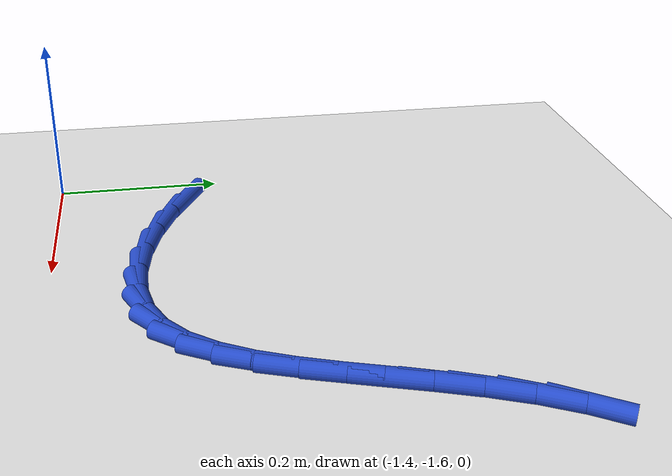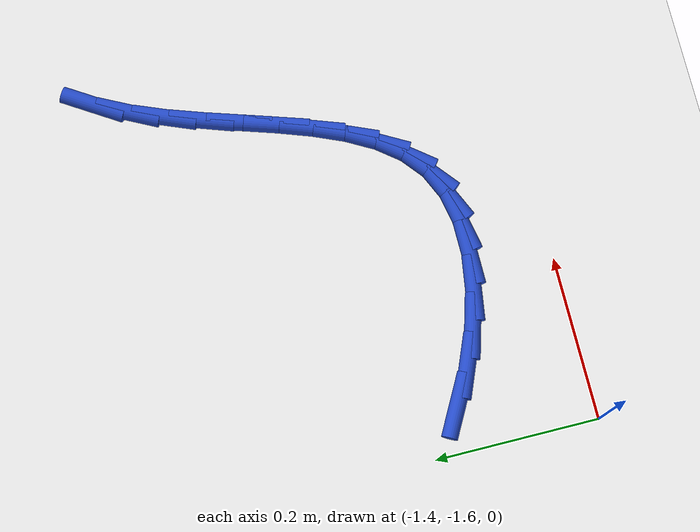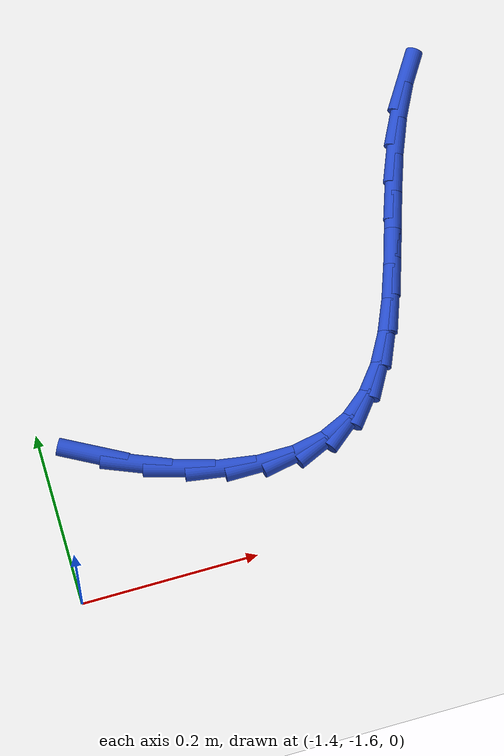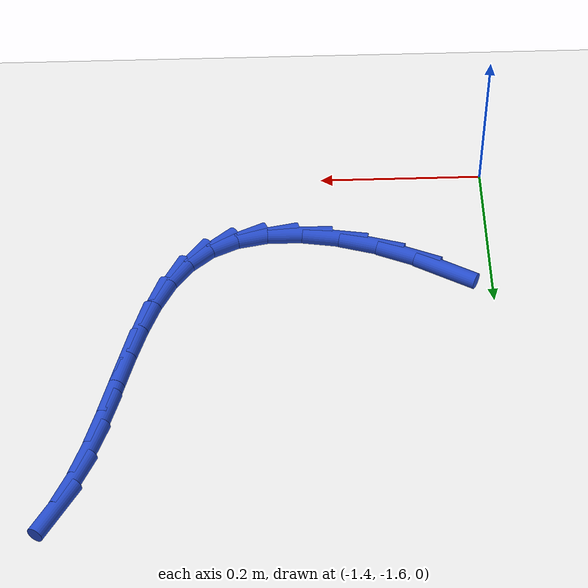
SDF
<sdf version="1.6">
 <world name="default">
  <model name="ground_plane">
   <static>1</static>
   <link name="link">
    <collision name="collision">
     <geometry><plane><normal>0 0 1</normal><size>100 100</size></plane></geometry>
     <surface><friction><ode><mu>100</mu><mu2>50</mu2></ode></friction></surface>
    </collision>
    <visual name="visual">
     <cast_shadows>0</cast_shadows>
     <geometry><plane><normal>0 0 1</normal><size>100 100</size></plane></geometry>
     <material>
      <script><uri>file://media/materials/scripts/gazebo.material</uri><name>Gazebo/WhiteGlow</name></script>
     </material>
    </visual>
   </link>
  </model>
  <model name="line">
   <link name="link_167">
    <pose>-1.3444002720872739 -1.4409359020324977 0.01 0 1.57 -0.5009706102876813</pose>
    <collision name="collision">
     <geometry><cylinder><radius>0.01</radius><length>0.08</length></cylinder></geometry>
    </collision>
    <visual name="visual">
     <material>
      <script><name>Gazebo/Blue</name><uri>file://media/materials/scripts/gazebo.material</uri></script>
     </material>
     <geometry><cylinder><radius>0.01</radius><length>0.08</length></cylinder></geometry>
    </visual>
   </link>
   <link name="link_168">
    <pose>-1.301152880833771 -1.46461659254429 0.01 0 1.57 -0.39433230291015714</pose>
    <collision name="collision">
     <geometry><cylinder><radius>0.01</radius><length>0.08</length></cylinder></geometry>
    </collision>
    <visual name="visual">
     <material>
      <script><name>Gazebo/Blue</name><uri>file://media/materials/scripts/gazebo.material</uri></script>
     </material>
     <geometry><cylinder><radius>0.01</radius><length>0.08</length></cylinder></geometry>
    </visual>
   </link>
   <link name="link_169">
    <pose>-1.2568613972314573 -1.4830475321903684 0.01 0 1.57 -0.28029390177098035</pose>
    <collision name="collision">
     <geometry><cylinder><radius>0.01</radius><length>0.08</length></cylinder></geometry>
    </collision>
    <visual name="visual">
     <material>
      <script><name>Gazebo/Blue</name><uri>file://media/materials/scripts/gazebo.material</uri></script>
     </material>
     <geometry><cylinder><radius>0.01</radius><length>0.08</length></cylinder></geometry>
    </visual>
   </link>
   <link name="link_170">
    <pose>-1.2126629624705576 -1.4957710485945959 0.01 0 1.57 -0.15146511612175606</pose>
    <collision name="collision">
     <geometry><cylinder><radius>0.01</radius><length>0.08</length></cylinder></geometry>
    </collision>
    <visual name="visual">
     <material>
      <script><name>Gazebo/Blue</name><uri>file://media/materials/scripts/gazebo.material</uri></script>
     </material>
     <geometry><cylinder><radius>0.01</radius><length>0.08</length></cylinder></geometry>
    </visual>
   </link>
   <link name="link_171">
    <pose>-1.1696947177412953 -1.5023294693808371 0.01 0 1.57 0.0015848696112074547</pose>
    <collision name="collision">
     <geometry><cylinder><radius>0.01</radius><length>0.08</length></cylinder></geometry>
    </collision>
    <visual name="visual">
     <material>
      <script><name>Gazebo/Blue</name><uri>file://media/materials/scripts/gazebo.material</uri></script>
     </material>
     <geometry><cylinder><radius>0.01</radius><length>0.08</length></cylinder></geometry>
    </visual>
   </link>
   <link name="link_172">
    <pose>-1.1290938042338925 -1.502265122172956 0.01 0 1.57 0.1902704941619328</pose>
    <collision name="collision">
     <geometry><cylinder><radius>0.01</radius><length>0.08</length></cylinder></geometry>
    </collision>
    <visual name="visual">
     <material>
      <script><name>Gazebo/Blue</name><uri>file://media/materials/scripts/gazebo.material</uri></script>
     </material>
     <geometry><cylinder><radius>0.01</radius><length>0.08</length></cylinder></geometry>
    </visual>
   </link>
   <link name="link_173">
    <pose>-1.0919973631385718 -1.495120334594816 0.01 0 1.57 0.4248004634723236</pose>
    <collision name="collision">
     <geometry><cylinder><radius>0.01</radius><length>0.08</length></cylinder></geometry>
    </collision>
    <visual name="visual">
     <material>
      <script><name>Gazebo/Blue</name><uri>file://media/materials/scripts/gazebo.material</uri></script>
     </material>
     <geometry><cylinder><radius>0.01</radius><length>0.08</length></cylinder></geometry>
    </visual>
   </link>
   <link name="link_174">
    <pose>-1.059540779346768 -1.4804388336998477 0.01 0 1.57 0.6849329007556227</pose>
    <collision name="collision">
     <geometry><cylinder><radius>0.01</radius><length>0.08</length></cylinder></geometry>
    </collision>
    <visual name="visual">
     <material>
      <script><name>Gazebo/Blue</name><uri>file://media/materials/scripts/gazebo.material</uri></script>
     </material>
     <geometry><cylinder><radius>0.01</radius><length>0.08</length></cylinder></geometry>
    </visual>
   </link>
   <link name="link_175">
    <pose>-1.0323142429687466 -1.4581987610615066 0.01 0 1.57 0.9023852062272526</pose>
    <collision name="collision">
     <geometry><cylinder><radius>0.01</radius><length>0.08</length></cylinder></geometry>
    </collision>
    <visual name="visual">
     <material>
      <script><name>Gazebo/Blue</name><uri>file://media/materials/scripts/gazebo.material</uri></script>
     </material>
     <geometry><cylinder><radius>0.01</radius><length>0.08</length></cylinder></geometry>
    </visual>
   </link>
   <link name="link_176">
    <pose>-1.0095931420258855 -1.429425900560368 0.01 0 1.57 1.0597628978285676</pose>
    <collision name="collision">
     <geometry><cylinder><radius>0.01</radius><length>0.08</length></cylinder></geometry>
    </collision>
    <visual name="visual">
     <material>
      <script><name>Gazebo/Blue</name><uri>file://media/materials/scripts/gazebo.material</uri></script>
     </material>
     <geometry><cylinder><radius>0.01</radius><length>0.08</length></cylinder></geometry>
    </visual>
   </link>
   <link name="link_177">
    <pose>-0.9904586401975009 -1.395300795214931 0.01 0 1.57 1.1647178387256096</pose>
    <collision name="collision">
     <geometry><cylinder><radius>0.01</radius><length>0.08</length></cylinder></geometry>
    </collision>
    <visual name="visual">
     <material>
      <script><name>Gazebo/Blue</name><uri>file://media/materials/scripts/gazebo.material</uri></script>
     </material>
     <geometry><cylinder><radius>0.01</radius><length>0.08</length></cylinder></geometry>
    </visual>
   </link>
   <link name="link_178">
    <pose>-0.9739919011629095 -1.3570039880436937 0.01 0 1.57 1.2283715908703494</pose>
    <collision name="collision">
     <geometry><cylinder><radius>0.01</radius><length>0.08</length></cylinder></geometry>
    </collision>
    <visual name="visual">
     <material>
      <script><name>Gazebo/Blue</name><uri>file://media/materials/scripts/gazebo.material</uri></script>
     </material>
     <geometry><cylinder><radius>0.01</radius><length>0.08</length></cylinder></geometry>
    </visual>
   </link>
   <link name="link_179">
    <pose>-0.9592740886014289 -1.3157160220651576 0.01 0 1.57 1.2590704385089317</pose>
    <collision name="collision">
     <geometry><cylinder><radius>0.01</radius><length>0.08</length></cylinder></geometry>
    </collision>
    <visual name="visual">
     <material>
      <script><name>Gazebo/Blue</name><uri>file://media/materials/scripts/gazebo.material</uri></script>
     </material>
     <geometry><cylinder><radius>0.01</radius><length>0.08</length></cylinder></geometry>
    </visual>
   </link>
   <link name="link_180">
    <pose>-0.9453863661923757 -1.2726174402978203 0.01 0 1.57 1.2614398653323855</pose>
    <collision name="collision">
     <geometry><cylinder><radius>0.01</radius><length>0.08</length></cylinder></geometry>
    </collision>
    <visual name="visual">
     <material>
      <script><name>Gazebo/Blue</name><uri>file://media/materials/scripts/gazebo.material</uri></script>
     </material>
     <geometry><cylinder><radius>0.01</radius><length>0.08</length></cylinder></geometry>
    </visual>
   </link>
   <link name="link_181">
    <pose>-0.9314098976150671 -1.2288887857601816 0.01 0 1.57 1.2367713677832246</pose>
    <collision name="collision">
     <geometry><cylinder><radius>0.01</radius><length>0.08</length></cylinder></geometry>
    </collision>
    <visual name="visual">
     <material>
      <script><name>Gazebo/Blue</name><uri>file://media/materials/scripts/gazebo.material</uri></script>
     </material>
     <geometry><cylinder><radius>0.01</radius><length>0.08</length></cylinder></geometry>
    </visual>
   </link>
   <link name="link_182">
    <pose>-0.9164258465488186 -1.1857106014707384 0.01 0 1.57 1.1834119805720427</pose>
    <collision name="collision">
     <geometry><cylinder><radius>0.01</radius><length>0.08</length></cylinder></geometry>
    </collision>
    <visual name="visual">
     <material>
      <script><name>Gazebo/Blue</name><uri>file://media/materials/scripts/gazebo.material</uri></script>
     </material>
     <geometry><cylinder><radius>0.01</radius><length>0.08</length></cylinder></geometry>
    </visual>
   </link>
   <link name="link_183">
    <pose>-0.8995153766729486 -1.1442634304479928 0.01 0 1.57 1.0994410759769753</pose>
    <collision name="collision">
     <geometry><cylinder><radius>0.01</radius><length>0.08</length></cylinder></geometry>
    </collision>
    <visual name="visual">
     <material>
      <script><name>Gazebo/Blue</name><uri>file://media/materials/scripts/gazebo.material</uri></script>
     </material>
     <geometry><cylinder><radius>0.01</radius><length>0.08</length></cylinder></geometry>
    </visual>
   </link>
   <link name="link_184">
    <pose>-0.8798303004111595 -1.1056404031569536 0.01 0 1.57 1.0047471589780055</pose>
    <collision name="collision">
     <geometry><cylinder><radius>0.01</radius><length>0.08</length></cylinder></geometry>
    </collision>
    <visual name="visual">
     <material>
      <script><name>Gazebo/Blue</name><uri>file://media/materials/scripts/gazebo.material</uri></script>
     </material>
     <geometry><cylinder><radius>0.01</radius><length>0.08</length></cylinder></geometry>
    </visual>
   </link>
  </model>
 </world>
</sdf>
